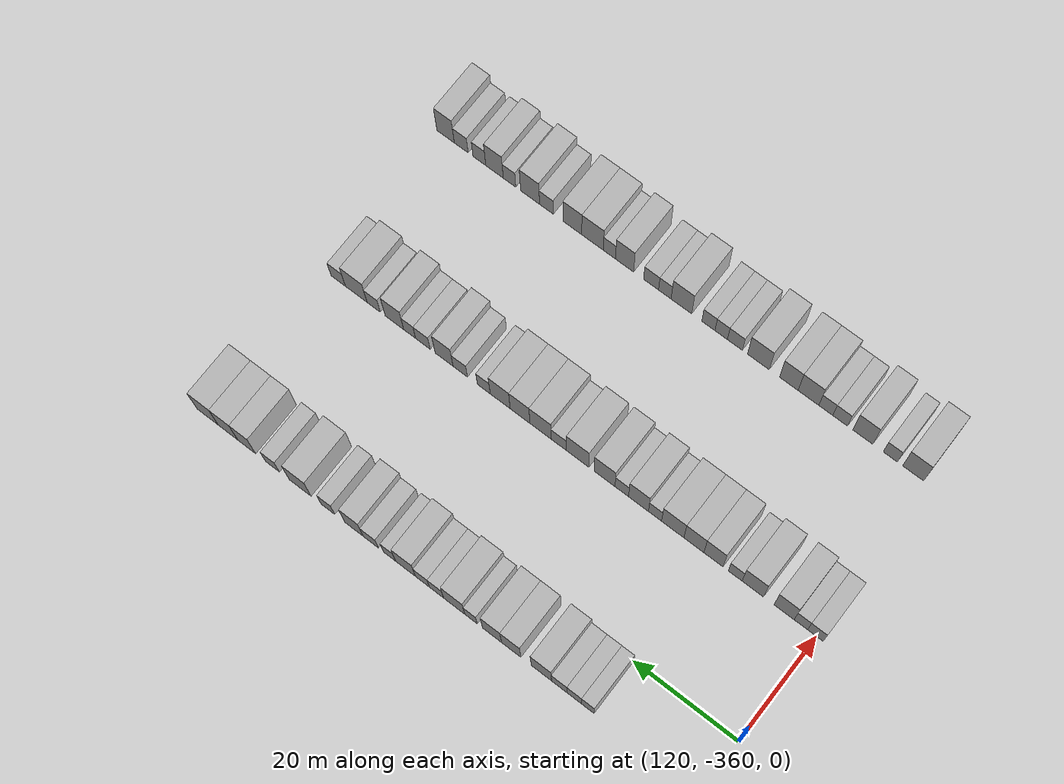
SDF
<sdf version="1.6">
 <world name="default">
  <model name="building_707">
   <static>1</static>
   <pose>115.0000 -338.9739 0 0.000000 0.000000 0.000000</pose>
   <link name="link">
    <pose>0 0 3.00 0 0 0</pose>
    <collision name="collision"><geometry><box><size>10.0000 2.4232 6.0000</size></box></geometry></collision>
    <visual name="visual">
     <cast_shadows>0</cast_shadows>
     <geometry><box><size>10.0000 2.4232 6.0000</size></box></geometry>
     <material>
      <script>
       <uri>model://HANNAS_wall/materials/scripts</uri>
       <uri>model://HANNAS_wall/materials/textures</uri>
       <name>vrc/HANNAS_wall</name>
      </script>
     </material>
    </visual>
   </link>
  </model>
  <model name="building_708">
   <static>1</static>
   <pose>115.0000 -336.3769 0 0.000000 0.000000 0.000000</pose>
   <link name="link">
    <pose>0 0 3.00 0 0 0</pose>
    <collision name="collision"><geometry><box><size>10.0000 2.7709 6.0000</size></box></geometry></collision>
    <visual name="visual">
     <cast_shadows>0</cast_shadows>
     <geometry><box><size>10.0000 2.7709 6.0000</size></box></geometry>
     <material>
      <script>
       <uri>model://HANNAS_wall/materials/scripts</uri>
       <uri>model://HANNAS_wall/materials/textures</uri>
       <name>vrc/HANNAS_wall</name>
      </script>
     </material>
    </visual>
   </link>
  </model>
  <model name="building_709">
   <static>1</static>
   <pose>115.0000 -333.5209 0 0.000000 0.000000 0.000000</pose>
   <link name="link">
    <pose>0 0 3.00 0 0 0</pose>
    <collision name="collision"><geometry><box><size>10.0000 2.9410 6.0000</size></box></geometry></collision>
    <visual name="visual">
     <cast_shadows>0</cast_shadows>
     <geometry><box><size>10.0000 2.9410 6.0000</size></box></geometry>
     <material>
      <script>
       <uri>model://HANNAS_wall/materials/scripts</uri>
       <uri>model://HANNAS_wall/materials/textures</uri>
       <name>vrc/HANNAS_wall</name>
      </script>
     </material>
    </visual>
   </link>
  </model>
  <model name="building_710">
   <static>1</static>
   <pose>115.0000 -330.1042 0 0.000000 0.000000 0.000000</pose>
   <link name="link">
    <pose>0 0 4.50 0 0 0</pose>
    <collision name="collision"><geometry><box><size>10.0000 3.8924 9.0000</size></box></geometry></collision>
    <visual name="visual">
     <cast_shadows>0</cast_shadows>
     <geometry><box><size>10.0000 3.8924 9.0000</size></box></geometry>
     <material>
      <script>
       <uri>model://HANNAS_wall/materials/scripts</uri>
       <uri>model://HANNAS_wall/materials/textures</uri>
       <name>vrc/HANNAS_wall</name>
      </script>
     </material>
    </visual>
   </link>
  </model>
  <model name="building_711">
   <static>1</static>
   <pose>115.0000 -324.2971 0 0.000000 0.000000 0.000000</pose>
   <link name="link">
    <pose>0 0 4.50 0 0 0</pose>
    <collision name="collision"><geometry><box><size>10.0000 3.7219 9.0000</size></box></geometry></collision>
    <visual name="visual">
     <cast_shadows>0</cast_shadows>
     <geometry><box><size>10.0000 3.7219 9.0000</size></box></geometry>
     <material>
      <script>
       <uri>model://HANNAS_wall/materials/scripts</uri>
       <uri>model://HANNAS_wall/materials/textures</uri>
       <name>vrc/HANNAS_wall</name>
      </script>
     </material>
    </visual>
   </link>
  </model>
  <model name="building_712">
   <static>1</static>
   <pose>115.0000 -320.5811 0 0.000000 0.000000 0.000000</pose>
   <link name="link">
    <pose>0 0 4.50 0 0 0</pose>
    <collision name="collision"><geometry><box><size>10.0000 3.7100 9.0000</size></box></geometry></collision>
    <visual name="visual">
     <cast_shadows>0</cast_shadows>
     <geometry><box><size>10.0000 3.7100 9.0000</size></box></geometry>
     <material>
      <script>
       <uri>model://HANNAS_wall/materials/scripts</uri>
       <uri>model://HANNAS_wall/materials/textures</uri>
       <name>vrc/HANNAS_wall</name>
      </script>
     </material>
    </visual>
   </link>
  </model>
  <model name="building_713">
   <static>1</static>
   <pose>115.0000 -316.5147 0 0.000000 0.000000 0.000000</pose>
   <link name="link">
    <pose>0 0 3.00 0 0 0</pose>
    <collision name="collision"><geometry><box><size>10.0000 2.4229 6.0000</size></box></geometry></collision>
    <visual name="visual">
     <cast_shadows>0</cast_shadows>
     <geometry><box><size>10.0000 2.4229 6.0000</size></box></geometry>
     <material>
      <script>
       <uri>model://HANNAS_wall/materials/scripts</uri>
       <uri>model://HANNAS_wall/materials/textures</uri>
       <name>vrc/HANNAS_wall</name>
      </script>
     </material>
    </visual>
   </link>
  </model>
  <model name="building_714">
   <static>1</static>
   <pose>115.0000 -313.2235 0 0.000000 0.000000 0.000000</pose>
   <link name="link">
    <pose>0 0 4.50 0 0 0</pose>
    <collision name="collision"><geometry><box><size>10.0000 4.1593 9.0000</size></box></geometry></collision>
    <visual name="visual">
     <cast_shadows>0</cast_shadows>
     <geometry><box><size>10.0000 4.1593 9.0000</size></box></geometry>
     <material>
      <script>
       <uri>model://HANNAS_wall/materials/scripts</uri>
       <uri>model://HANNAS_wall/materials/textures</uri>
       <name>vrc/HANNAS_wall</name>
      </script>
     </material>
    </visual>
   </link>
  </model>
  <model name="building_715">
   <static>1</static>
   <pose>115.0000 -309.7568 0 0.000000 0.000000 0.000000</pose>
   <link name="link">
    <pose>0 0 3.00 0 0 0</pose>
    <collision name="collision"><geometry><box><size>10.0000 2.7741 6.0000</size></box></geometry></collision>
    <visual name="visual">
     <cast_shadows>0</cast_shadows>
     <geometry><box><size>10.0000 2.7741 6.0000</size></box></geometry>
     <material>
      <script>
       <uri>model://HANNAS_wall/materials/scripts</uri>
       <uri>model://HANNAS_wall/materials/textures</uri>
       <name>vrc/HANNAS_wall</name>
      </script>
     </material>
    </visual>
   </link>
  </model>
  <model name="building_716">
   <static>1</static>
   <pose>115.0000 -306.9927 0 0.000000 0.000000 0.000000</pose>
   <link name="link">
    <pose>0 0 3.00 0 0 0</pose>
    <collision name="collision"><geometry><box><size>10.0000 2.7541 6.0000</size></box></geometry></collision>
    <visual name="visual">
     <cast_shadows>0</cast_shadows>
     <geometry><box><size>10.0000 2.7541 6.0000</size></box></geometry>
     <material>
      <script>
       <uri>model://HANNAS_wall/materials/scripts</uri>
       <uri>model://HANNAS_wall/materials/textures</uri>
       <name>vrc/HANNAS_wall</name>
      </script>
     </material>
    </visual>
   </link>
  </model>
  <model name="building_717">
   <static>1</static>
   <pose>115.0000 -303.6523 0 0.000000 0.000000 0.000000</pose>
   <link name="link">
    <pose>0 0 4.50 0 0 0</pose>
    <collision name="collision"><geometry><box><size>10.0000 3.9268 9.0000</size></box></geometry></collision>
    <visual name="visual">
     <cast_shadows>0</cast_shadows>
     <geometry><box><size>10.0000 3.9268 9.0000</size></box></geometry>
     <material>
      <script>
       <uri>model://HANNAS_wall/materials/scripts</uri>
       <uri>model://HANNAS_wall/materials/textures</uri>
       <name>vrc/HANNAS_wall</name>
      </script>
     </material>
    </visual>
   </link>
  </model>
  <model name="building_718">
   <static>1</static>
   <pose>115.0000 -300.4677 0 0.000000 0.000000 0.000000</pose>
   <link name="link">
    <pose>0 0 3.00 0 0 0</pose>
    <collision name="collision"><geometry><box><size>10.0000 2.4423 6.0000</size></box></geometry></collision>
    <visual name="visual">
     <cast_shadows>0</cast_shadows>
     <geometry><box><size>10.0000 2.4423 6.0000</size></box></geometry>
     <material>
      <script>
       <uri>model://HANNAS_wall/materials/scripts</uri>
       <uri>model://HANNAS_wall/materials/textures</uri>
       <name>vrc/HANNAS_wall</name>
      </script>
     </material>
    </visual>
   </link>
  </model>
  <model name="building_719">
   <static>1</static>
   <pose>115.0000 -296.7583 0 0.000000 0.000000 0.000000</pose>
   <link name="link">
    <pose>0 0 3.00 0 0 0</pose>
    <collision name="collision"><geometry><box><size>10.0000 2.9765 6.0000</size></box></geometry></collision>
    <visual name="visual">
     <cast_shadows>0</cast_shadows>
     <geometry><box><size>10.0000 2.9765 6.0000</size></box></geometry>
     <material>
      <script>
       <uri>model://HANNAS_wall/materials/scripts</uri>
       <uri>model://HANNAS_wall/materials/textures</uri>
       <name>vrc/HANNAS_wall</name>
      </script>
     </material>
    </visual>
   </link>
  </model>
  <model name="building_720">
   <static>1</static>
   <pose>115.0000 -293.4082 0 0.000000 0.000000 0.000000</pose>
   <link name="link">
    <pose>0 0 4.50 0 0 0</pose>
    <collision name="collision"><geometry><box><size>10.0000 3.7237 9.0000</size></box></geometry></collision>
    <visual name="visual">
     <cast_shadows>0</cast_shadows>
     <geometry><box><size>10.0000 3.7237 9.0000</size></box></geometry>
     <material>
      <script>
       <uri>model://HANNAS_wall/materials/scripts</uri>
       <uri>model://HANNAS_wall/materials/textures</uri>
       <name>vrc/HANNAS_wall</name>
      </script>
     </material>
    </visual>
   </link>
  </model>
  <model name="building_721">
   <static>1</static>
   <pose>115.0000 -288.1675 0 0.000000 0.000000 0.000000</pose>
   <link name="link">
    <pose>0 0 3.00 0 0 0</pose>
    <collision name="collision"><geometry><box><size>10.0000 2.7578 6.0000</size></box></geometry></collision>
    <visual name="visual">
     <cast_shadows>0</cast_shadows>
     <geometry><box><size>10.0000 2.7578 6.0000</size></box></geometry>
     <material>
      <script>
       <uri>model://HANNAS_wall/materials/scripts</uri>
       <uri>model://HANNAS_wall/materials/textures</uri>
       <name>vrc/HANNAS_wall</name>
      </script>
     </material>
    </visual>
   </link>
  </model>
  <model name="building_722">
   <static>1</static>
   <pose>115.0000 -282.5849 0 0.000000 0.000000 0.000000</pose>
   <link name="link">
    <pose>0 0 4.50 0 0 0</pose>
    <collision name="collision"><geometry><box><size>10.0000 4.4074 9.0000</size></box></geometry></collision>
    <visual name="visual">
     <cast_shadows>0</cast_shadows>
     <geometry><box><size>10.0000 4.4074 9.0000</size></box></geometry>
     <material>
      <script>
       <uri>model://HANNAS_wall/materials/scripts</uri>
       <uri>model://HANNAS_wall/materials/textures</uri>
       <name>vrc/HANNAS_wall</name>
      </script>
     </material>
    </visual>
   </link>
  </model>
  <model name="building_723">
   <static>1</static>
   <pose>115.0000 -276.9730 0 0.000000 0.000000 0.000000</pose>
   <link name="link">
    <pose>0 0 3.00 0 0 0</pose>
    <collision name="collision"><geometry><box><size>10.0000 2.8164 6.0000</size></box></geometry></collision>
    <visual name="visual">
     <cast_shadows>0</cast_shadows>
     <geometry><box><size>10.0000 2.8164 6.0000</size></box></geometry>
     <material>
      <script>
       <uri>model://HANNAS_wall/materials/scripts</uri>
       <uri>model://HANNAS_wall/materials/textures</uri>
       <name>vrc/HANNAS_wall</name>
      </script>
     </material>
    </visual>
   </link>
  </model>
  <model name="building_724">
   <static>1</static>
   <pose>115.0000 -271.7454 0 0.000000 0.000000 0.000000</pose>
   <link name="link">
    <pose>0 0 4.50 0 0 0</pose>
    <collision name="collision"><geometry><box><size>10.0000 3.6389 9.0000</size></box></geometry></collision>
    <visual name="visual">
     <cast_shadows>0</cast_shadows>
     <geometry><box><size>10.0000 3.6389 9.0000</size></box></geometry>
     <material>
      <script>
       <uri>model://HANNAS_wall/materials/scripts</uri>
       <uri>model://HANNAS_wall/materials/textures</uri>
       <name>vrc/HANNAS_wall</name>
      </script>
     </material>
    </visual>
   </link>
  </model>
  <model name="building_725">
   <static>1</static>
   <pose>115.0000 -267.9139 0 0.000000 0.000000 0.000000</pose>
   <link name="link">
    <pose>0 0 4.50 0 0 0</pose>
    <collision name="collision"><geometry><box><size>10.0000 4.0241 9.0000</size></box></geometry></collision>
    <visual name="visual">
     <cast_shadows>0</cast_shadows>
     <geometry><box><size>10.0000 4.0241 9.0000</size></box></geometry>
     <material>
      <script>
       <uri>model://HANNAS_wall/materials/scripts</uri>
       <uri>model://HANNAS_wall/materials/textures</uri>
       <name>vrc/HANNAS_wall</name>
      </script>
     </material>
    </visual>
   </link>
  </model>
  <model name="building_726">
   <static>1</static>
   <pose>115.0000 -263.7200 0 0.000000 0.000000 0.000000</pose>
   <link name="link">
    <pose>0 0 4.50 0 0 0</pose>
    <collision name="collision"><geometry><box><size>10.0000 4.3637 9.0000</size></box></geometry></collision>
    <visual name="visual">
     <cast_shadows>0</cast_shadows>
     <geometry><box><size>10.0000 4.3637 9.0000</size></box></geometry>
     <material>
      <script>
       <uri>model://HANNAS_wall/materials/scripts</uri>
       <uri>model://HANNAS_wall/materials/textures</uri>
       <name>vrc/HANNAS_wall</name>
      </script>
     </material>
    </visual>
   </link>
  </model>
  <model name="building_932">
   <static>1</static>
   <pose>145.0000 -359.8472 0 0.000000 0.000000 0.000000</pose>
   <link name="link">
    <pose>0 0 3.00 0 0 0</pose>
    <collision name="collision"><geometry><box><size>10.0000 2.9525 6.0000</size></box></geometry></collision>
    <visual name="visual">
     <cast_shadows>0</cast_shadows>
     <geometry><box><size>10.0000 2.9525 6.0000</size></box></geometry>
     <material>
      <script>
       <uri>model://HANNAS_wall/materials/scripts</uri>
       <uri>model://HANNAS_wall/materials/textures</uri>
       <name>vrc/HANNAS_wall</name>
      </script>
     </material>
    </visual>
   </link>
  </model>
  <model name="building_933">
   <static>1</static>
   <pose>145.0000 -357.1107 0 0.000000 0.000000 0.000000</pose>
   <link name="link">
    <pose>0 0 3.00 0 0 0</pose>
    <collision name="collision"><geometry><box><size>10.0000 2.5205 6.0000</size></box></geometry></collision>
    <visual name="visual">
     <cast_shadows>0</cast_shadows>
     <geometry><box><size>10.0000 2.5205 6.0000</size></box></geometry>
     <material>
      <script>
       <uri>model://HANNAS_wall/materials/scripts</uri>
       <uri>model://HANNAS_wall/materials/textures</uri>
       <name>vrc/HANNAS_wall</name>
      </script>
     </material>
    </visual>
   </link>
  </model>
  <model name="building_934">
   <static>1</static>
   <pose>145.0000 -353.9459 0 0.000000 0.000000 0.000000</pose>
   <link name="link">
    <pose>0 0 4.50 0 0 0</pose>
    <collision name="collision"><geometry><box><size>10.0000 3.8091 9.0000</size></box></geometry></collision>
    <visual name="visual">
     <cast_shadows>0</cast_shadows>
     <geometry><box><size>10.0000 3.8091 9.0000</size></box></geometry>
     <material>
      <script>
       <uri>model://HANNAS_wall/materials/scripts</uri>
       <uri>model://HANNAS_wall/materials/textures</uri>
       <name>vrc/HANNAS_wall</name>
      </script>
     </material>
    </visual>
   </link>
  </model>
  <model name="building_935">
   <static>1</static>
   <pose>145.0000 -348.0035 0 0.000000 0.000000 0.000000</pose>
   <link name="link">
    <pose>0 0 4.50 0 0 0</pose>
    <collision name="collision"><geometry><box><size>10.0000 4.0759 9.0000</size></box></geometry></collision>
    <visual name="visual">
     <cast_shadows>0</cast_shadows>
     <geometry><box><size>10.0000 4.0759 9.0000</size></box></geometry>
     <material>
      <script>
       <uri>model://HANNAS_wall/materials/scripts</uri>
       <uri>model://HANNAS_wall/materials/textures</uri>
       <name>vrc/HANNAS_wall</name>
      </script>
     </material>
    </visual>
   </link>
  </model>
  <model name="building_936">
   <static>1</static>
   <pose>145.0000 -344.6438 0 0.000000 0.000000 0.000000</pose>
   <link name="link">
    <pose>0 0 3.00 0 0 0</pose>
    <collision name="collision"><geometry><box><size>10.0000 2.6435 6.0000</size></box></geometry></collision>
    <visual name="visual">
     <cast_shadows>0</cast_shadows>
     <geometry><box><size>10.0000 2.6435 6.0000</size></box></geometry>
     <material>
      <script>
       <uri>model://HANNAS_wall/materials/scripts</uri>
       <uri>model://HANNAS_wall/materials/textures</uri>
       <name>vrc/HANNAS_wall</name>
      </script>
     </material>
    </visual>
   </link>
  </model>
  <model name="building_937">
   <static>1</static>
   <pose>145.0000 -340.4837 0 0.000000 0.000000 0.000000</pose>
   <link name="link">
    <pose>0 0 4.50 0 0 0</pose>
    <collision name="collision"><geometry><box><size>10.0000 3.6767 9.0000</size></box></geometry></collision>
    <visual name="visual">
     <cast_shadows>0</cast_shadows>
     <geometry><box><size>10.0000 3.6767 9.0000</size></box></geometry>
     <material>
      <script>
       <uri>model://HANNAS_wall/materials/scripts</uri>
       <uri>model://HANNAS_wall/materials/textures</uri>
       <name>vrc/HANNAS_wall</name>
      </script>
     </material>
    </visual>
   </link>
  </model>
  <model name="building_938">
   <static>1</static>
   <pose>145.0000 -336.7219 0 0.000000 0.000000 0.000000</pose>
   <link name="link">
    <pose>0 0 4.50 0 0 0</pose>
    <collision name="collision"><geometry><box><size>10.0000 3.8468 9.0000</size></box></geometry></collision>
    <visual name="visual">
     <cast_shadows>0</cast_shadows>
     <geometry><box><size>10.0000 3.8468 9.0000</size></box></geometry>
     <material>
      <script>
       <uri>model://HANNAS_wall/materials/scripts</uri>
       <uri>model://HANNAS_wall/materials/textures</uri>
       <name>vrc/HANNAS_wall</name>
      </script>
     </material>
    </visual>
   </link>
  </model>
  <model name="building_939">
   <static>1</static>
   <pose>145.0000 -332.6301 0 0.000000 0.000000 0.000000</pose>
   <link name="link">
    <pose>0 0 4.50 0 0 0</pose>
    <collision name="collision"><geometry><box><size>10.0000 4.3369 9.0000</size></box></geometry></collision>
    <visual name="visual">
     <cast_shadows>0</cast_shadows>
     <geometry><box><size>10.0000 4.3369 9.0000</size></box></geometry>
     <material>
      <script>
       <uri>model://HANNAS_wall/materials/scripts</uri>
       <uri>model://HANNAS_wall/materials/textures</uri>
       <name>vrc/HANNAS_wall</name>
      </script>
     </material>
    </visual>
   </link>
  </model>
  <model name="building_940">
   <static>1</static>
   <pose>145.0000 -329.1909 0 0.000000 0.000000 0.000000</pose>
   <link name="link">
    <pose>0 0 3.00 0 0 0</pose>
    <collision name="collision"><geometry><box><size>10.0000 2.5416 6.0000</size></box></geometry></collision>
    <visual name="visual">
     <cast_shadows>0</cast_shadows>
     <geometry><box><size>10.0000 2.5416 6.0000</size></box></geometry>
     <material>
      <script>
       <uri>model://HANNAS_wall/materials/scripts</uri>
       <uri>model://HANNAS_wall/materials/textures</uri>
       <name>vrc/HANNAS_wall</name>
      </script>
     </material>
    </visual>
   </link>
  </model>
  <model name="building_941">
   <static>1</static>
   <pose>145.0000 -325.9845 0 0.000000 0.000000 0.000000</pose>
   <link name="link">
    <pose>0 0 4.50 0 0 0</pose>
    <collision name="collision"><geometry><box><size>10.0000 3.8712 9.0000</size></box></geometry></collision>
    <visual name="visual">
     <cast_shadows>0</cast_shadows>
     <geometry><box><size>10.0000 3.8712 9.0000</size></box></geometry>
     <material>
      <script>
       <uri>model://HANNAS_wall/materials/scripts</uri>
       <uri>model://HANNAS_wall/materials/textures</uri>
       <name>vrc/HANNAS_wall</name>
      </script>
     </material>
    </visual>
   </link>
  </model>
  <model name="building_942">
   <static>1</static>
   <pose>145.0000 -322.7254 0 0.000000 0.000000 0.000000</pose>
   <link name="link">
    <pose>0 0 3.00 0 0 0</pose>
    <collision name="collision"><geometry><box><size>10.0000 2.6469 6.0000</size></box></geometry></collision>
    <visual name="visual">
     <cast_shadows>0</cast_shadows>
     <geometry><box><size>10.0000 2.6469 6.0000</size></box></geometry>
     <material>
      <script>
       <uri>model://HANNAS_wall/materials/scripts</uri>
       <uri>model://HANNAS_wall/materials/textures</uri>
       <name>vrc/HANNAS_wall</name>
      </script>
     </material>
    </visual>
   </link>
  </model>
  <model name="building_943">
   <static>1</static>
   <pose>145.0000 -319.3576 0 0.000000 0.000000 0.000000</pose>
   <link name="link">
    <pose>0 0 4.50 0 0 0</pose>
    <collision name="collision"><geometry><box><size>10.0000 4.0887 9.0000</size></box></geometry></collision>
    <visual name="visual">
     <cast_shadows>0</cast_shadows>
     <geometry><box><size>10.0000 4.0887 9.0000</size></box></geometry>
     <material>
      <script>
       <uri>model://HANNAS_wall/materials/scripts</uri>
       <uri>model://HANNAS_wall/materials/textures</uri>
       <name>vrc/HANNAS_wall</name>
      </script>
     </material>
    </visual>
   </link>
  </model>
  <model name="building_944">
   <static>1</static>
   <pose>145.0000 -314.0954 0 0.000000 0.000000 0.000000</pose>
   <link name="link">
    <pose>0 0 4.50 0 0 0</pose>
    <collision name="collision"><geometry><box><size>10.0000 4.4356 9.0000</size></box></geometry></collision>
    <visual name="visual">
     <cast_shadows>0</cast_shadows>
     <geometry><box><size>10.0000 4.4356 9.0000</size></box></geometry>
     <material>
      <script>
       <uri>model://HANNAS_wall/materials/scripts</uri>
       <uri>model://HANNAS_wall/materials/textures</uri>
       <name>vrc/HANNAS_wall</name>
      </script>
     </material>
    </visual>
   </link>
  </model>
  <model name="building_945">
   <static>1</static>
   <pose>145.0000 -310.3803 0 0.000000 0.000000 0.000000</pose>
   <link name="link">
    <pose>0 0 3.00 0 0 0</pose>
    <collision name="collision"><geometry><box><size>10.0000 2.9946 6.0000</size></box></geometry></collision>
    <visual name="visual">
     <cast_shadows>0</cast_shadows>
     <geometry><box><size>10.0000 2.9946 6.0000</size></box></geometry>
     <material>
      <script>
       <uri>model://HANNAS_wall/materials/scripts</uri>
       <uri>model://HANNAS_wall/materials/textures</uri>
       <name>vrc/HANNAS_wall</name>
      </script>
     </material>
    </visual>
   </link>
  </model>
  <model name="building_946">
   <static>1</static>
   <pose>145.0000 -306.7639 0 0.000000 0.000000 0.000000</pose>
   <link name="link">
    <pose>0 0 4.50 0 0 0</pose>
    <collision name="collision"><geometry><box><size>10.0000 4.2383 9.0000</size></box></geometry></collision>
    <visual name="visual">
     <cast_shadows>0</cast_shadows>
     <geometry><box><size>10.0000 4.2383 9.0000</size></box></geometry>
     <material>
      <script>
       <uri>model://HANNAS_wall/materials/scripts</uri>
       <uri>model://HANNAS_wall/materials/textures</uri>
       <name>vrc/HANNAS_wall</name>
      </script>
     </material>
    </visual>
   </link>
  </model>
  <model name="building_947">
   <static>1</static>
   <pose>145.0000 -302.6770 0 0.000000 0.000000 0.000000</pose>
   <link name="link">
    <pose>0 0 4.50 0 0 0</pose>
    <collision name="collision"><geometry><box><size>10.0000 3.9354 9.0000</size></box></geometry></collision>
    <visual name="visual">
     <cast_shadows>0</cast_shadows>
     <geometry><box><size>10.0000 3.9354 9.0000</size></box></geometry>
     <material>
      <script>
       <uri>model://HANNAS_wall/materials/scripts</uri>
       <uri>model://HANNAS_wall/materials/textures</uri>
       <name>vrc/HANNAS_wall</name>
      </script>
     </material>
    </visual>
   </link>
  </model>
  <model name="building_948">
   <static>1</static>
   <pose>145.0000 -298.7131 0 0.000000 0.000000 0.000000</pose>
   <link name="link">
    <pose>0 0 4.50 0 0 0</pose>
    <collision name="collision"><geometry><box><size>10.0000 3.9925 9.0000</size></box></geometry></collision>
    <visual name="visual">
     <cast_shadows>0</cast_shadows>
     <geometry><box><size>10.0000 3.9925 9.0000</size></box></geometry>
     <material>
      <script>
       <uri>model://HANNAS_wall/materials/scripts</uri>
       <uri>model://HANNAS_wall/materials/textures</uri>
       <name>vrc/HANNAS_wall</name>
      </script>
     </material>
    </visual>
   </link>
  </model>
  <model name="building_949">
   <static>1</static>
   <pose>145.0000 -295.4258 0 0.000000 0.000000 0.000000</pose>
   <link name="link">
    <pose>0 0 3.00 0 0 0</pose>
    <collision name="collision"><geometry><box><size>10.0000 2.5821 6.0000</size></box></geometry></collision>
    <visual name="visual">
     <cast_shadows>0</cast_shadows>
     <geometry><box><size>10.0000 2.5821 6.0000</size></box></geometry>
     <material>
      <script>
       <uri>model://HANNAS_wall/materials/scripts</uri>
       <uri>model://HANNAS_wall/materials/textures</uri>
       <name>vrc/HANNAS_wall</name>
      </script>
     </material>
    </visual>
   </link>
  </model>
  <model name="building_950">
   <static>1</static>
   <pose>145.0000 -290.6833 0 0.000000 0.000000 0.000000</pose>
   <link name="link">
    <pose>0 0 3.00 0 0 0</pose>
    <collision name="collision"><geometry><box><size>10.0000 2.9030 6.0000</size></box></geometry></collision>
    <visual name="visual">
     <cast_shadows>0</cast_shadows>
     <geometry><box><size>10.0000 2.9030 6.0000</size></box></geometry>
     <material>
      <script>
       <uri>model://HANNAS_wall/materials/scripts</uri>
       <uri>model://HANNAS_wall/materials/textures</uri>
       <name>vrc/HANNAS_wall</name>
      </script>
     </material>
    </visual>
   </link>
  </model>
  <model name="building_951">
   <static>1</static>
   <pose>145.0000 -287.4133 0 0.000000 0.000000 0.000000</pose>
   <link name="link">
    <pose>0 0 4.50 0 0 0</pose>
    <collision name="collision"><geometry><box><size>10.0000 3.6371 9.0000</size></box></geometry></collision>
    <visual name="visual">
     <cast_shadows>0</cast_shadows>
     <geometry><box><size>10.0000 3.6371 9.0000</size></box></geometry>
     <material>
      <script>
       <uri>model://HANNAS_wall/materials/scripts</uri>
       <uri>model://HANNAS_wall/materials/textures</uri>
       <name>vrc/HANNAS_wall</name>
      </script>
     </material>
    </visual>
   </link>
  </model>
  <model name="building_952">
   <static>1</static>
   <pose>145.0000 -283.1174 0 0.000000 0.000000 0.000000</pose>
   <link name="link">
    <pose>0 0 3.00 0 0 0</pose>
    <collision name="collision"><geometry><box><size>10.0000 2.9547 6.0000</size></box></geometry></collision>
    <visual name="visual">
     <cast_shadows>0</cast_shadows>
     <geometry><box><size>10.0000 2.9547 6.0000</size></box></geometry>
     <material>
      <script>
       <uri>model://HANNAS_wall/materials/scripts</uri>
       <uri>model://HANNAS_wall/materials/textures</uri>
       <name>vrc/HANNAS_wall</name>
      </script>
     </material>
    </visual>
   </link>
  </model>
  <model name="building_953">
   <static>1</static>
   <pose>145.0000 -280.4225 0 0.000000 0.000000 0.000000</pose>
   <link name="link">
    <pose>0 0 3.00 0 0 0</pose>
    <collision name="collision"><geometry><box><size>10.0000 2.4352 6.0000</size></box></geometry></collision>
    <visual name="visual">
     <cast_shadows>0</cast_shadows>
     <geometry><box><size>10.0000 2.4352 6.0000</size></box></geometry>
     <material>
      <script>
       <uri>model://HANNAS_wall/materials/scripts</uri>
       <uri>model://HANNAS_wall/materials/textures</uri>
       <name>vrc/HANNAS_wall</name>
      </script>
     </material>
    </visual>
   </link>
  </model>
  <model name="building_954">
   <static>1</static>
   <pose>145.0000 -277.3099 0 0.000000 0.000000 0.000000</pose>
   <link name="link">
    <pose>0 0 4.50 0 0 0</pose>
    <collision name="collision"><geometry><box><size>10.0000 3.7900 9.0000</size></box></geometry></collision>
    <visual name="visual">
     <cast_shadows>0</cast_shadows>
     <geometry><box><size>10.0000 3.7900 9.0000</size></box></geometry>
     <material>
      <script>
       <uri>model://HANNAS_wall/materials/scripts</uri>
       <uri>model://HANNAS_wall/materials/textures</uri>
       <name>vrc/HANNAS_wall</name>
      </script>
     </material>
    </visual>
   </link>
  </model>
  <model name="building_955">
   <static>1</static>
   <pose>145.0000 -273.0519 0 0.000000 0.000000 0.000000</pose>
   <link name="link">
    <pose>0 0 3.00 0 0 0</pose>
    <collision name="collision"><geometry><box><size>10.0000 2.7259 6.0000</size></box></geometry></collision>
    <visual name="visual">
     <cast_shadows>0</cast_shadows>
     <geometry><box><size>10.0000 2.7259 6.0000</size></box></geometry>
     <material>
      <script>
       <uri>model://HANNAS_wall/materials/scripts</uri>
       <uri>model://HANNAS_wall/materials/textures</uri>
       <name>vrc/HANNAS_wall</name>
      </script>
     </material>
    </visual>
   </link>
  </model>
  <model name="building_956">
   <static>1</static>
   <pose>145.0000 -269.4606 0 0.000000 0.000000 0.000000</pose>
   <link name="link">
    <pose>0 0 4.50 0 0 0</pose>
    <collision name="collision"><geometry><box><size>10.0000 4.4568 9.0000</size></box></geometry></collision>
    <visual name="visual">
     <cast_shadows>0</cast_shadows>
     <geometry><box><size>10.0000 4.4568 9.0000</size></box></geometry>
     <material>
      <script>
       <uri>model://HANNAS_wall/materials/scripts</uri>
       <uri>model://HANNAS_wall/materials/textures</uri>
       <name>vrc/HANNAS_wall</name>
      </script>
     </material>
    </visual>
   </link>
  </model>
  <model name="building_957">
   <static>1</static>
   <pose>145.0000 -265.7447 0 0.000000 0.000000 0.000000</pose>
   <link name="link">
    <pose>0 0 3.00 0 0 0</pose>
    <collision name="collision"><geometry><box><size>10.0000 2.9749 6.0000</size></box></geometry></collision>
    <visual name="visual">
     <cast_shadows>0</cast_shadows>
     <geometry><box><size>10.0000 2.9749 6.0000</size></box></geometry>
     <material>
      <script>
       <uri>model://HANNAS_wall/materials/scripts</uri>
       <uri>model://HANNAS_wall/materials/textures</uri>
       <name>vrc/HANNAS_wall</name>
      </script>
     </material>
    </visual>
   </link>
  </model>
  <model name="building_1157">
   <static>1</static>
   <pose>175.0000 -357.1179 0 0.000000 0.000000 0.000000</pose>
   <link name="link">
    <pose>0 0 4.50 0 0 0</pose>
    <collision name="collision"><geometry><box><size>10.0000 4.0107 9.0000</size></box></geometry></collision>
    <visual name="visual">
     <cast_shadows>0</cast_shadows>
     <geometry><box><size>10.0000 4.0107 9.0000</size></box></geometry>
     <material>
      <script>
       <uri>model://HANNAS_wall/materials/scripts</uri>
       <uri>model://HANNAS_wall/materials/textures</uri>
       <name>vrc/HANNAS_wall</name>
      </script>
     </material>
    </visual>
   </link>
  </model>
  <model name="building_1158">
   <static>1</static>
   <pose>175.0000 -352.7592 0 0.000000 0.000000 0.000000</pose>
   <link name="link">
    <pose>0 0 3.00 0 0 0</pose>
    <collision name="collision"><geometry><box><size>10.0000 2.7066 6.0000</size></box></geometry></collision>
    <visual name="visual">
     <cast_shadows>0</cast_shadows>
     <geometry><box><size>10.0000 2.7066 6.0000</size></box></geometry>
     <material>
      <script>
       <uri>model://HANNAS_wall/materials/scripts</uri>
       <uri>model://HANNAS_wall/materials/textures</uri>
       <name>vrc/HANNAS_wall</name>
      </script>
     </material>
    </visual>
   </link>
  </model>
  <model name="building_1159">
   <static>1</static>
   <pose>175.0000 -347.4835 0 0.000000 0.000000 0.000000</pose>
   <link name="link">
    <pose>0 0 4.50 0 0 0</pose>
    <collision name="collision"><geometry><box><size>10.0000 3.8448 9.0000</size></box></geometry></collision>
    <visual name="visual">
     <cast_shadows>0</cast_shadows>
     <geometry><box><size>10.0000 3.8448 9.0000</size></box></geometry>
     <material>
      <script>
       <uri>model://HANNAS_wall/materials/scripts</uri>
       <uri>model://HANNAS_wall/materials/textures</uri>
       <name>vrc/HANNAS_wall</name>
      </script>
     </material>
    </visual>
   </link>
  </model>
  <model name="building_1160">
   <static>1</static>
   <pose>175.0000 -343.1340 0 0.000000 0.000000 0.000000</pose>
   <link name="link">
    <pose>0 0 3.00 0 0 0</pose>
    <collision name="collision"><geometry><box><size>10.0000 2.8542 6.0000</size></box></geometry></collision>
    <visual name="visual">
     <cast_shadows>0</cast_shadows>
     <geometry><box><size>10.0000 2.8542 6.0000</size></box></geometry>
     <material>
      <script>
       <uri>model://HANNAS_wall/materials/scripts</uri>
       <uri>model://HANNAS_wall/materials/textures</uri>
       <name>vrc/HANNAS_wall</name>
      </script>
     </material>
    </visual>
   </link>
  </model>
  <model name="building_1161">
   <static>1</static>
   <pose>175.0000 -340.3493 0 0.000000 0.000000 0.000000</pose>
   <link name="link">
    <pose>0 0 3.00 0 0 0</pose>
    <collision name="collision"><geometry><box><size>10.0000 2.7153 6.0000</size></box></geometry></collision>
    <visual name="visual">
     <cast_shadows>0</cast_shadows>
     <geometry><box><size>10.0000 2.7153 6.0000</size></box></geometry>
     <material>
      <script>
       <uri>model://HANNAS_wall/materials/scripts</uri>
       <uri>model://HANNAS_wall/materials/textures</uri>
       <name>vrc/HANNAS_wall</name>
      </script>
     </material>
    </visual>
   </link>
  </model>
  <model name="building_1162">
   <static>1</static>
   <pose>175.0000 -336.9827 0 0.000000 0.000000 0.000000</pose>
   <link name="link">
    <pose>0 0 4.50 0 0 0</pose>
    <collision name="collision"><geometry><box><size>10.0000 4.0178 9.0000</size></box></geometry></collision>
    <visual name="visual">
     <cast_shadows>0</cast_shadows>
     <geometry><box><size>10.0000 4.0178 9.0000</size></box></geometry>
     <material>
      <script>
       <uri>model://HANNAS_wall/materials/scripts</uri>
       <uri>model://HANNAS_wall/materials/textures</uri>
       <name>vrc/HANNAS_wall</name>
      </script>
     </material>
    </visual>
   </link>
  </model>
  <model name="building_1163">
   <static>1</static>
   <pose>175.0000 -333.1597 0 0.000000 0.000000 0.000000</pose>
   <link name="link">
    <pose>0 0 4.50 0 0 0</pose>
    <collision name="collision"><geometry><box><size>10.0000 3.6283 9.0000</size></box></geometry></collision>
    <visual name="visual">
     <cast_shadows>0</cast_shadows>
     <geometry><box><size>10.0000 3.6283 9.0000</size></box></geometry>
     <material>
      <script>
       <uri>model://HANNAS_wall/materials/scripts</uri>
       <uri>model://HANNAS_wall/materials/textures</uri>
       <name>vrc/HANNAS_wall</name>
      </script>
     </material>
    </visual>
   </link>
  </model>
  <model name="building_1164">
   <static>1</static>
   <pose>175.0000 -327.2080 0 0.000000 0.000000 0.000000</pose>
   <link name="link">
    <pose>0 0 4.50 0 0 0</pose>
    <collision name="collision"><geometry><box><size>10.0000 4.2752 9.0000</size></box></geometry></collision>
    <visual name="visual">
     <cast_shadows>0</cast_shadows>
     <geometry><box><size>10.0000 4.2752 9.0000</size></box></geometry>
     <material>
      <script>
       <uri>model://HANNAS_wall/materials/scripts</uri>
       <uri>model://HANNAS_wall/materials/textures</uri>
       <name>vrc/HANNAS_wall</name>
      </script>
     </material>
    </visual>
   </link>
  </model>
  <model name="building_1165">
   <static>1</static>
   <pose>175.0000 -322.5967 0 0.000000 0.000000 0.000000</pose>
   <link name="link">
    <pose>0 0 3.00 0 0 0</pose>
    <collision name="collision"><geometry><box><size>10.0000 2.9474 6.0000</size></box></geometry></collision>
    <visual name="visual">
     <cast_shadows>0</cast_shadows>
     <geometry><box><size>10.0000 2.9474 6.0000</size></box></geometry>
     <material>
      <script>
       <uri>model://HANNAS_wall/materials/scripts</uri>
       <uri>model://HANNAS_wall/materials/textures</uri>
       <name>vrc/HANNAS_wall</name>
      </script>
     </material>
    </visual>
   </link>
  </model>
  <model name="building_1166">
   <static>1</static>
   <pose>175.0000 -319.8895 0 0.000000 0.000000 0.000000</pose>
   <link name="link">
    <pose>0 0 3.00 0 0 0</pose>
    <collision name="collision"><geometry><box><size>10.0000 2.4671 6.0000</size></box></geometry></collision>
    <visual name="visual">
     <cast_shadows>0</cast_shadows>
     <geometry><box><size>10.0000 2.4671 6.0000</size></box></geometry>
     <material>
      <script>
       <uri>model://HANNAS_wall/materials/scripts</uri>
       <uri>model://HANNAS_wall/materials/textures</uri>
       <name>vrc/HANNAS_wall</name>
      </script>
     </material>
    </visual>
   </link>
  </model>
  <model name="building_1167">
   <static>1</static>
   <pose>175.0000 -317.3500 0 0.000000 0.000000 0.000000</pose>
   <link name="link">
    <pose>0 0 3.00 0 0 0</pose>
    <collision name="collision"><geometry><box><size>10.0000 2.6118 6.0000</size></box></geometry></collision>
    <visual name="visual">
     <cast_shadows>0</cast_shadows>
     <geometry><box><size>10.0000 2.6118 6.0000</size></box></geometry>
     <material>
      <script>
       <uri>model://HANNAS_wall/materials/scripts</uri>
       <uri>model://HANNAS_wall/materials/textures</uri>
       <name>vrc/HANNAS_wall</name>
      </script>
     </material>
    </visual>
   </link>
  </model>
  <model name="building_1168">
   <static>1</static>
   <pose>175.0000 -311.9882 0 0.000000 0.000000 0.000000</pose>
   <link name="link">
    <pose>0 0 4.50 0 0 0</pose>
    <collision name="collision"><geometry><box><size>10.0000 4.1118 9.0000</size></box></geometry></collision>
    <visual name="visual">
     <cast_shadows>0</cast_shadows>
     <geometry><box><size>10.0000 4.1118 9.0000</size></box></geometry>
     <material>
      <script>
       <uri>model://HANNAS_wall/materials/scripts</uri>
       <uri>model://HANNAS_wall/materials/textures</uri>
       <name>vrc/HANNAS_wall</name>
      </script>
     </material>
    </visual>
   </link>
  </model>
  <model name="building_1169">
   <static>1</static>
   <pose>175.0000 -308.6784 0 0.000000 0.000000 0.000000</pose>
   <link name="link">
    <pose>0 0 3.00 0 0 0</pose>
    <collision name="collision"><geometry><box><size>10.0000 2.5078 6.0000</size></box></geometry></collision>
    <visual name="visual">
     <cast_shadows>0</cast_shadows>
     <geometry><box><size>10.0000 2.5078 6.0000</size></box></geometry>
     <material>
      <script>
       <uri>model://HANNAS_wall/materials/scripts</uri>
       <uri>model://HANNAS_wall/materials/textures</uri>
       <name>vrc/HANNAS_wall</name>
      </script>
     </material>
    </visual>
   </link>
  </model>
  <model name="building_1170">
   <static>1</static>
   <pose>175.0000 -305.9308 0 0.000000 0.000000 0.000000</pose>
   <link name="link">
    <pose>0 0 3.00 0 0 0</pose>
    <collision name="collision"><geometry><box><size>10.0000 2.9875 6.0000</size></box></geometry></collision>
    <visual name="visual">
     <cast_shadows>0</cast_shadows>
     <geometry><box><size>10.0000 2.9875 6.0000</size></box></geometry>
     <material>
      <script>
       <uri>model://HANNAS_wall/materials/scripts</uri>
       <uri>model://HANNAS_wall/materials/textures</uri>
       <name>vrc/HANNAS_wall</name>
      </script>
     </material>
    </visual>
   </link>
  </model>
  <model name="building_1171">
   <static>1</static>
   <pose>175.0000 -300.6089 0 0.000000 0.000000 0.000000</pose>
   <link name="link">
    <pose>0 0 4.50 0 0 0</pose>
    <collision name="collision"><geometry><box><size>10.0000 3.6563 9.0000</size></box></geometry></collision>
    <visual name="visual">
     <cast_shadows>0</cast_shadows>
     <geometry><box><size>10.0000 3.6563 9.0000</size></box></geometry>
     <material>
      <script>
       <uri>model://HANNAS_wall/materials/scripts</uri>
       <uri>model://HANNAS_wall/materials/textures</uri>
       <name>vrc/HANNAS_wall</name>
      </script>
     </material>
    </visual>
   </link>
  </model>
  <model name="building_1172">
   <static>1</static>
   <pose>175.0000 -297.5568 0 0.000000 0.000000 0.000000</pose>
   <link name="link">
    <pose>0 0 3.00 0 0 0</pose>
    <collision name="collision"><geometry><box><size>10.0000 2.4479 6.0000</size></box></geometry></collision>
    <visual name="visual">
     <cast_shadows>0</cast_shadows>
     <geometry><box><size>10.0000 2.4479 6.0000</size></box></geometry>
     <material>
      <script>
       <uri>model://HANNAS_wall/materials/scripts</uri>
       <uri>model://HANNAS_wall/materials/textures</uri>
       <name>vrc/HANNAS_wall</name>
      </script>
     </material>
    </visual>
   </link>
  </model>
  <model name="building_1173">
   <static>1</static>
   <pose>175.0000 -294.1408 0 0.000000 0.000000 0.000000</pose>
   <link name="link">
    <pose>0 0 4.50 0 0 0</pose>
    <collision name="collision"><geometry><box><size>10.0000 4.3840 9.0000</size></box></geometry></collision>
    <visual name="visual">
     <cast_shadows>0</cast_shadows>
     <geometry><box><size>10.0000 4.3840 9.0000</size></box></geometry>
     <material>
      <script>
       <uri>model://HANNAS_wall/materials/scripts</uri>
       <uri>model://HANNAS_wall/materials/textures</uri>
       <name>vrc/HANNAS_wall</name>
      </script>
     </material>
    </visual>
   </link>
  </model>
  <model name="building_1174">
   <static>1</static>
   <pose>175.0000 -290.0581 0 0.000000 0.000000 0.000000</pose>
   <link name="link">
    <pose>0 0 4.50 0 0 0</pose>
    <collision name="collision"><geometry><box><size>10.0000 3.7814 9.0000</size></box></geometry></collision>
    <visual name="visual">
     <cast_shadows>0</cast_shadows>
     <geometry><box><size>10.0000 3.7814 9.0000</size></box></geometry>
     <material>
      <script>
       <uri>model://HANNAS_wall/materials/scripts</uri>
       <uri>model://HANNAS_wall/materials/textures</uri>
       <name>vrc/HANNAS_wall</name>
      </script>
     </material>
    </visual>
   </link>
  </model>
  <model name="building_1175">
   <static>1</static>
   <pose>175.0000 -284.7538 0 0.000000 0.000000 0.000000</pose>
   <link name="link">
    <pose>0 0 3.00 0 0 0</pose>
    <collision name="collision"><geometry><box><size>10.0000 2.8271 6.0000</size></box></geometry></collision>
    <visual name="visual">
     <cast_shadows>0</cast_shadows>
     <geometry><box><size>10.0000 2.8271 6.0000</size></box></geometry>
     <material>
      <script>
       <uri>model://HANNAS_wall/materials/scripts</uri>
       <uri>model://HANNAS_wall/materials/textures</uri>
       <name>vrc/HANNAS_wall</name>
      </script>
     </material>
    </visual>
   </link>
  </model>
  <model name="building_1176">
   <static>1</static>
   <pose>175.0000 -281.3961 0 0.000000 0.000000 0.000000</pose>
   <link name="link">
    <pose>0 0 4.50 0 0 0</pose>
    <collision name="collision"><geometry><box><size>10.0000 3.8884 9.0000</size></box></geometry></collision>
    <visual name="visual">
     <cast_shadows>0</cast_shadows>
     <geometry><box><size>10.0000 3.8884 9.0000</size></box></geometry>
     <material>
      <script>
       <uri>model://HANNAS_wall/materials/scripts</uri>
       <uri>model://HANNAS_wall/materials/textures</uri>
       <name>vrc/HANNAS_wall</name>
      </script>
     </material>
    </visual>
   </link>
  </model>
  <model name="building_1177">
   <static>1</static>
   <pose>175.0000 -277.1625 0 0.000000 0.000000 0.000000</pose>
   <link name="link">
    <pose>0 0 3.00 0 0 0</pose>
    <collision name="collision"><geometry><box><size>10.0000 2.5786 6.0000</size></box></geometry></collision>
    <visual name="visual">
     <cast_shadows>0</cast_shadows>
     <geometry><box><size>10.0000 2.5786 6.0000</size></box></geometry>
     <material>
      <script>
       <uri>model://HANNAS_wall/materials/scripts</uri>
       <uri>model://HANNAS_wall/materials/textures</uri>
       <name>vrc/HANNAS_wall</name>
      </script>
     </material>
    </visual>
   </link>
  </model>
  <model name="building_1178">
   <static>1</static>
   <pose>175.0000 -274.0651 0 0.000000 0.000000 0.000000</pose>
   <link name="link">
    <pose>0 0 4.50 0 0 0</pose>
    <collision name="collision"><geometry><box><size>10.0000 3.6163 9.0000</size></box></geometry></collision>
    <visual name="visual">
     <cast_shadows>0</cast_shadows>
     <geometry><box><size>10.0000 3.6163 9.0000</size></box></geometry>
     <material>
      <script>
       <uri>model://HANNAS_wall/materials/scripts</uri>
       <uri>model://HANNAS_wall/materials/textures</uri>
       <name>vrc/HANNAS_wall</name>
      </script>
     </material>
    </visual>
   </link>
  </model>
  <model name="building_1179">
   <static>1</static>
   <pose>175.0000 -270.9350 0 0.000000 0.000000 0.000000</pose>
   <link name="link">
    <pose>0 0 3.00 0 0 0</pose>
    <collision name="collision"><geometry><box><size>10.0000 2.6439 6.0000</size></box></geometry></collision>
    <visual name="visual">
     <cast_shadows>0</cast_shadows>
     <geometry><box><size>10.0000 2.6439 6.0000</size></box></geometry>
     <material>
      <script>
       <uri>model://HANNAS_wall/materials/scripts</uri>
       <uri>model://HANNAS_wall/materials/textures</uri>
       <name>vrc/HANNAS_wall</name>
      </script>
     </material>
    </visual>
   </link>
  </model>
  <model name="building_1180">
   <static>1</static>
   <pose>175.0000 -267.1653 0 0.000000 0.000000 0.000000</pose>
   <link name="link">
    <pose>0 0 3.00 0 0 0</pose>
    <collision name="collision"><geometry><box><size>10.0000 2.8955 6.0000</size></box></geometry></collision>
    <visual name="visual">
     <cast_shadows>0</cast_shadows>
     <geometry><box><size>10.0000 2.8955 6.0000</size></box></geometry>
     <material>
      <script>
       <uri>model://HANNAS_wall/materials/scripts</uri>
       <uri>model://HANNAS_wall/materials/textures</uri>
       <name>vrc/HANNAS_wall</name>
      </script>
     </material>
    </visual>
   </link>
  </model>
  <model name="building_1181">
   <static>1</static>
   <pose>175.0000 -263.9050 0 0.000000 0.000000 0.000000</pose>
   <link name="link">
    <pose>0 0 4.50 0 0 0</pose>
    <collision name="collision"><geometry><box><size>10.0000 3.6251 9.0000</size></box></geometry></collision>
    <visual name="visual">
     <cast_shadows>0</cast_shadows>
     <geometry><box><size>10.0000 3.6251 9.0000</size></box></geometry>
     <material>
      <script>
       <uri>model://HANNAS_wall/materials/scripts</uri>
       <uri>model://HANNAS_wall/materials/textures</uri>
       <name>vrc/HANNAS_wall</name>
      </script>
     </material>
    </visual>
   </link>
  </model>
 </world>
</sdf>
